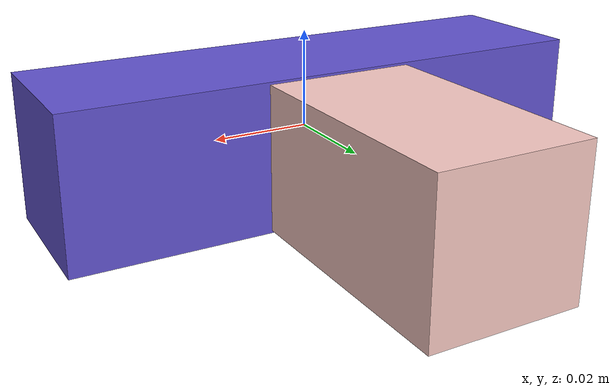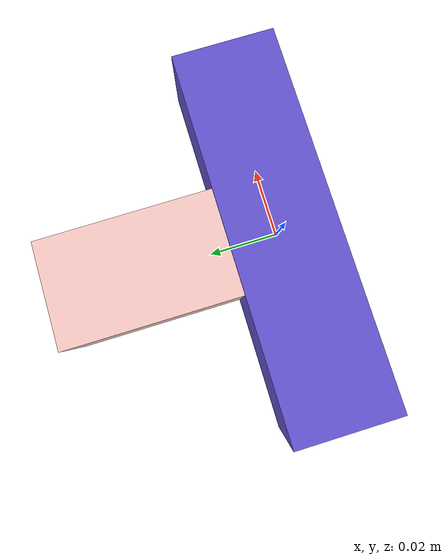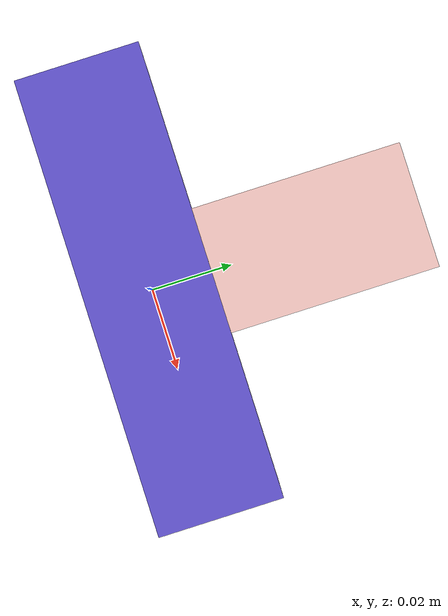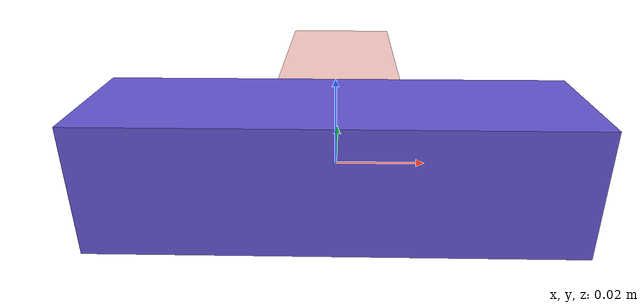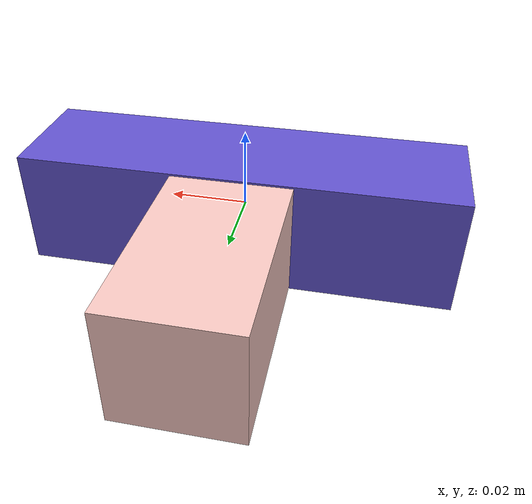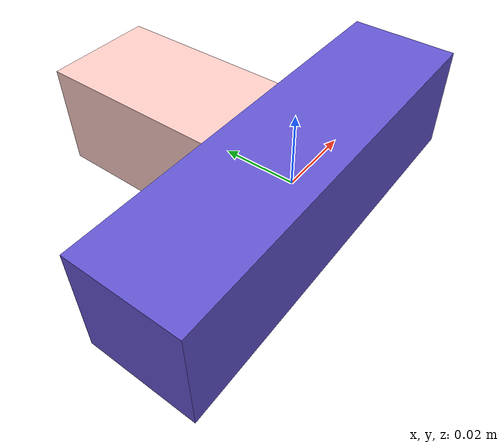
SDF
<sdf version="1.4"><world name="default"><model name="object0"><link name="link1"><pose>0 0 0 0 0 0</pose><inertial><pose>0 0 0 0 0 0</pose><mass>0.05934209454443385</mass><inertia><ixx>8.901314181665078e-06</ixx><ixy>0</ixy><iyy>6.417066378901567e-05</iyy><ixz>0</ixz><iyz>0</iyz><izz>6.417066378901567e-05</izz></inertia></inertial><visual name="link1_visual"><pose>0 0  0 0 0 0</pose><geometry><box><size>0.1098927676748775 0.03 0.03</size></box></geometry><material><diffuse>0.38747251231260504 0.32979859096536684 0.8205835936281007 1</diffuse></material></visual><collision><pose>0 0  0 0 0 0</pose><geometry><box><size>0.1098927676748775 0.03 0.03</size></box></geometry></collision></link><link name="link2"><pose>0.00040151698353393245 0.031655106449797354 0 0 0 0</pose><inertial><pose>0 0 0 0 0 0</pose><mass>0.03624016888282947</mass><inertia><ixx>1.6141803723048896e-05</ixx><ixy>0</ixy><iyy>5.2578445020838424e-06</iyy><ixz>0</ixz><iyz>0</iyz><izz>1.6319984553389477e-05</izz></inertia></inertial><visual name="link2_visual"><pose>0 0  0 0 0 0</pose><geometry><box><size>0.03 0.06711142385709162 0.028999999999999998</size></box></geometry><material><diffuse>0.977733802880886 0.7918060942388596 0.7691333854016058 1</diffuse></material></visual><collision><pose>0 0  0 0 0 0</pose><geometry><box><size>0.03 0.06711142385709162 0.028999999999999998</size></box></geometry></collision></link><joint name="link_joint_0" type="fixed"><parent>link1</parent><child>link2</child><pose>0 0 0 0 0 0</pose><axis><xyz>0 0 1</xyz></axis></joint></model></world></sdf>
